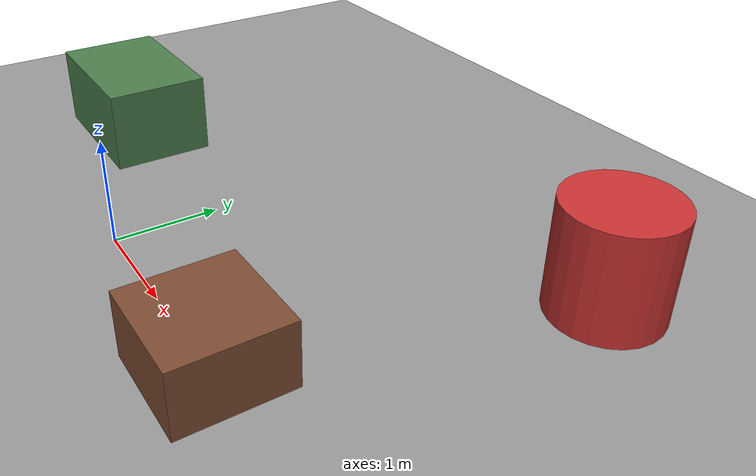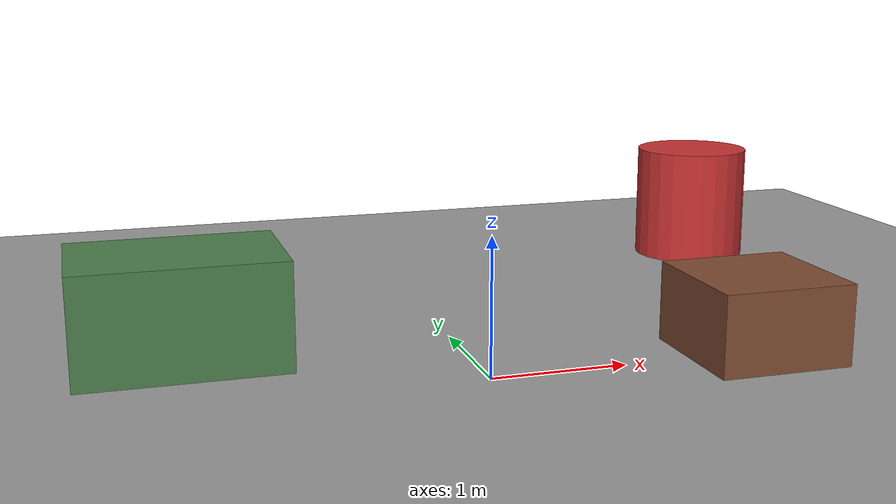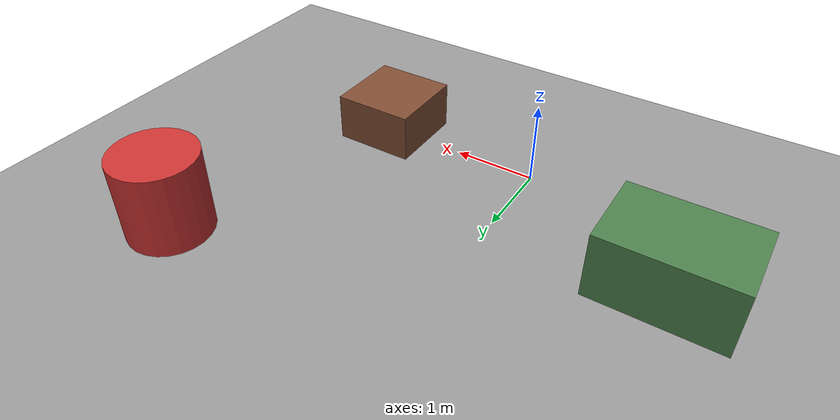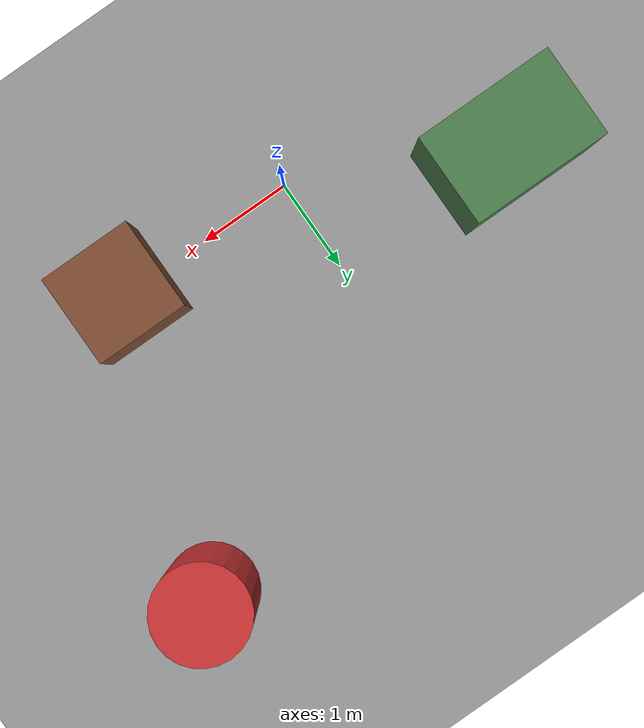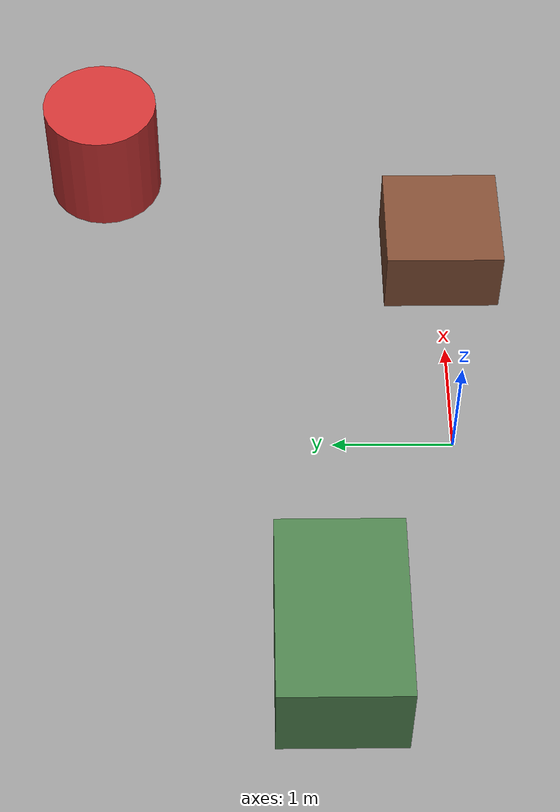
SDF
<?xml version="1.0" ?>
<sdf version="1.6">
  <world name="rough_world">

    <!-- Physics -->
    <physics type="ode">
      <gravity>0 0 -9.8</gravity>
    </physics>

    <!-- Light -->
    <light name="sun" type="directional">
      <cast_shadows>true</cast_shadows>
      <pose>0 0 10 0 0 0</pose>
      <diffuse>1 1 1 1</diffuse>
      <specular>0.1 0.1 0.1 1</specular>
      <direction>-0.5 0.5 -1</direction>
    </light>

    <!-- Ground Plane -->
    <model name="ground_plane">
      <static>true</static>
      <link name="link">
        <collision name="collision">
          <geometry>
            <plane>
              <normal>0 0 1</normal>
              <size>50 50</size>
            </plane>
          </geometry>
        </collision>
        <visual name="visual">
          <geometry>
            <plane>
              <normal>0 0 1</normal>
              <size>50 50</size>
            </plane>
          </geometry>
          <material>
            <ambient>0.4 0.4 0.4 1</ambient>
            <diffuse>0.6 0.6 0.6 1</diffuse>
          </material>
        </visual>
      </link>
    </model>

    <!-- Rough Terrain Bumps -->
    <model name="bump1">
      <pose>2 0 0.3 0 0 0</pose>
      <static>true</static>
      <link name="link">
        <collision name="collision">
          <geometry>
            <box><size>1 1 0.6</size></box>
          </geometry>
        </collision>
        <visual name="visual">
          <geometry>
            <box><size>1 1 0.6</size></box>
          </geometry>
          <material>
            <ambient>0.5 0.3 0.2 1</ambient>
          </material>
        </visual>
      </link>
    </model>

    <model name="bump2">
      <pose>-2 1 0.4 0 0 0</pose>
      <static>true</static>
      <link name="link">
        <collision name="collision">
          <geometry>
            <box><size>1.5 1 0.8</size></box>
          </geometry>
        </collision>
        <visual name="visual">
          <geometry>
            <box><size>1.5 1 0.8</size></box>
          </geometry>
          <material>
            <ambient>0.3 0.5 0.3 1</ambient>
          </material>
        </visual>
      </link>
    </model>

    <!-- Obstacles -->
    <model name="obstacle1">
      <pose>3 3 0.5 0 0 0</pose>
      <static>true</static>
      <link name="link">
        <collision name="collision">
          <geometry>
            <cylinder>
              <radius>0.5</radius>
              <length>1</length>
            </cylinder>
          </geometry>
        </collision>
        <visual name="visual">
          <geometry>
            <cylinder>
              <radius>0.5</radius>
              <length>1</length>
            </cylinder>
          </geometry>
          <material>
            <ambient>0.8 0.2 0.2 1</ambient>
          </material>
        </visual>
      </link>
    </model>

  </world>
</sdf>
